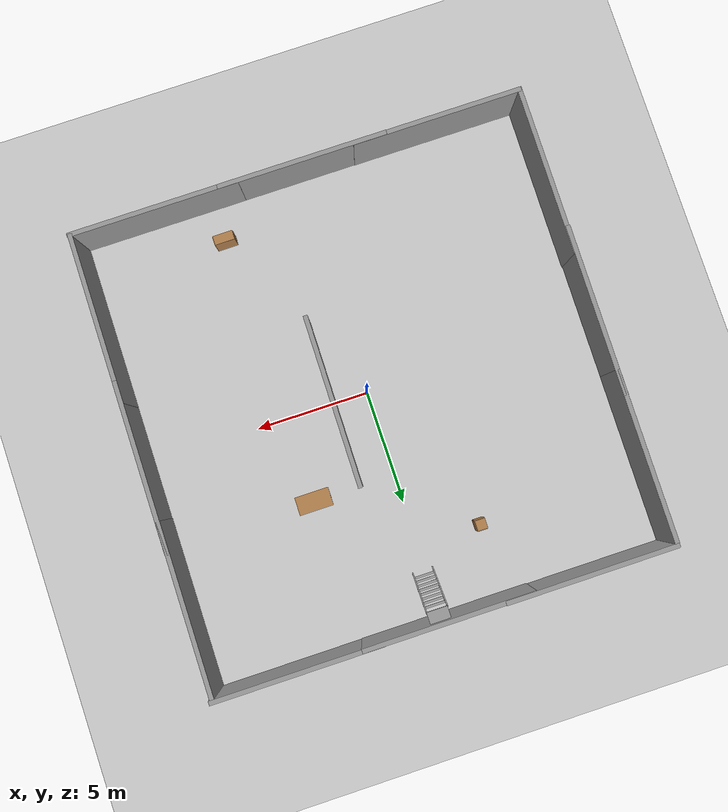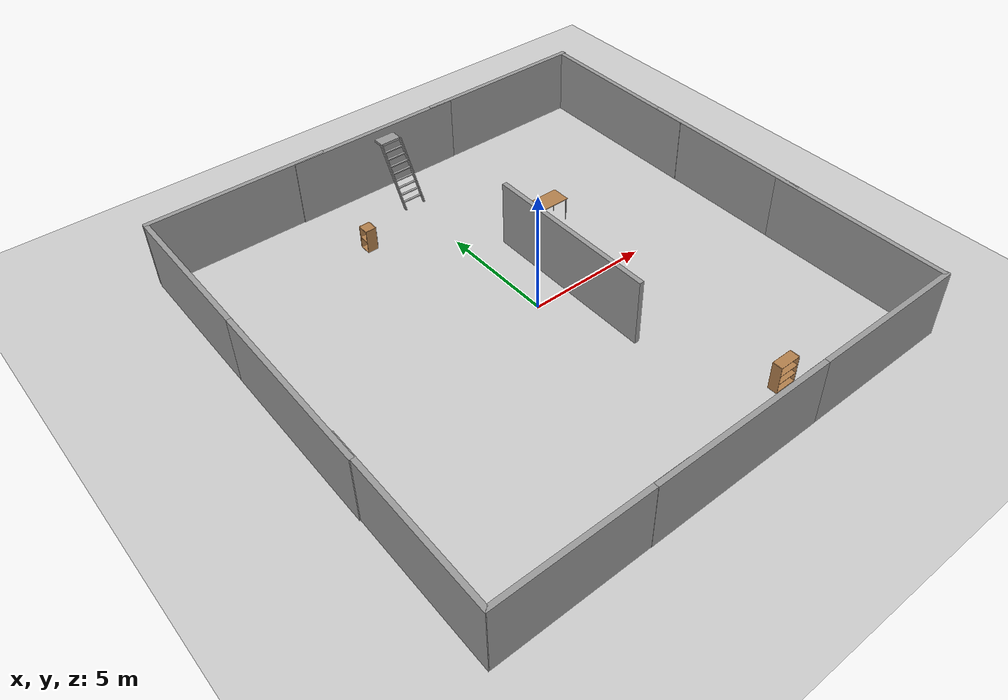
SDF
<sdf version="1.6">
 <world name="default">
  <model name="ground_plane">
   <static>1</static>
   <link name="link">
    <collision name="collision">
     <geometry><plane><normal>0 0 1</normal><size>100 100</size></plane></geometry>
     <surface><friction><ode><mu>100</mu><mu2>50</mu2></ode></friction></surface>
    </collision>
    <visual name="visual">
     <cast_shadows>0</cast_shadows>
     <geometry><plane><normal>0 0 1</normal><size>100 100</size></plane></geometry>
     <material>
      <ambient>1.0 1.0 1.0 1.0</ambient>
      <diffuse>0.8 0.8 0.8 1.0</diffuse>
      <specular>0.01 0.01 0.01 1.000000</specular>
     </material>
    </visual>
   </link>
  </model>
  <model name="grey_wall">
   <static>1</static>
   <link name="link">
    <pose>0 0 1.4 0 -0 0</pose>
    <collision name="collision"><geometry><box><size>7.5 0.2 2.8</size></box></geometry></collision>
    <visual name="visual">
     <cast_shadows>0</cast_shadows>
     <geometry><box><size>7.5 0.2 2.8</size></box></geometry>
     <material>
      <script>
       <uri>model://grey_wall/materials/scripts</uri>
       <uri>model://grey_wall/materials/textures</uri>
       <name>vrc/grey_wall</name>
      </script>
     </material>
    </visual>
   </link>
   <pose>-0.430951 -10.0176 0 0 -0 0</pose>
  </model>
  <model name="grey_wall_0">
   <static>1</static>
   <link name="link">
    <pose>0 0 1.4 0 -0 0</pose>
    <collision name="collision"><geometry><box><size>7.5 0.2 2.8</size></box></geometry></collision>
    <visual name="visual">
     <cast_shadows>0</cast_shadows>
     <geometry><box><size>7.5 0.2 2.8</size></box></geometry>
     <material>
      <script>
       <uri>model://grey_wall/materials/scripts</uri>
       <uri>model://grey_wall/materials/textures</uri>
       <name>vrc/grey_wall</name>
      </script>
     </material>
    </visual>
   </link>
   <pose>-6.43801 -10.0068 0 0 -0 0</pose>
  </model>
  <model name="grey_wall_1">
   <static>1</static>
   <link name="link">
    <pose>0 0 1.4 0 -0 0</pose>
    <collision name="collision"><geometry><box><size>7.5 0.2 2.8</size></box></geometry></collision>
    <visual name="visual">
     <cast_shadows>0</cast_shadows>
     <geometry><box><size>7.5 0.2 2.8</size></box></geometry>
     <material>
      <script>
       <uri>model://grey_wall/materials/scripts</uri>
       <uri>model://grey_wall/materials/textures</uri>
       <name>vrc/grey_wall</name>
      </script>
     </material>
    </visual>
   </link>
   <pose>-0.187528 10.1006 0 0 -0 0</pose>
  </model>
  <model name="grey_wall_2">
   <static>1</static>
   <link name="link">
    <pose>0 0 1.4 0 -0 0</pose>
    <collision name="collision"><geometry><box><size>7.5 0.2 2.8</size></box></geometry></collision>
    <visual name="visual">
     <cast_shadows>0</cast_shadows>
     <geometry><box><size>7.5 0.2 2.8</size></box></geometry>
     <material>
      <script>
       <uri>model://grey_wall/materials/scripts</uri>
       <uri>model://grey_wall/materials/textures</uri>
       <name>vrc/grey_wall</name>
      </script>
     </material>
    </visual>
   </link>
   <pose>-6.34448 10.1286 0 0 -0 0</pose>
  </model>
  <model name="grey_wall_3">
   <static>1</static>
   <link name="link">
    <pose>0 0 1.4 0 -0 0</pose>
    <collision name="collision"><geometry><box><size>7.5 0.2 2.8</size></box></geometry></collision>
    <visual name="visual">
     <cast_shadows>0</cast_shadows>
     <geometry><box><size>7.5 0.2 2.8</size></box></geometry>
     <material>
      <script>
       <uri>model://grey_wall/materials/scripts</uri>
       <uri>model://grey_wall/materials/textures</uri>
       <name>vrc/grey_wall</name>
      </script>
     </material>
    </visual>
   </link>
   <pose>-10.0924 -6.35537 0 0 0 -1.57741</pose>
  </model>
  <model name="grey_wall_3_clone">
   <static>1</static>
   <link name="link">
    <pose>0 0 1.4 0 -0 0</pose>
    <collision name="collision"><geometry><box><size>7.5 0.2 2.8</size></box></geometry></collision>
    <visual name="visual">
     <cast_shadows>0</cast_shadows>
     <geometry><box><size>7.5 0.2 2.8</size></box></geometry>
     <material>
      <script>
       <uri>model://grey_wall/materials/scripts</uri>
       <uri>model://grey_wall/materials/textures</uri>
       <name>vrc/grey_wall</name>
      </script>
     </material>
    </visual>
   </link>
   <pose>-10.0385 6.29221 0 0 0 -1.57741</pose>
  </model>
  <model name="grey_wall_3_clone_0">
   <static>1</static>
   <link name="link">
    <pose>0 0 1.4 0 -0 0</pose>
    <collision name="collision"><geometry><box><size>7.5 0.2 2.8</size></box></geometry></collision>
    <visual name="visual">
     <cast_shadows>0</cast_shadows>
     <geometry><box><size>7.5 0.2 2.8</size></box></geometry>
     <material>
      <script>
       <uri>model://grey_wall/materials/scripts</uri>
       <uri>model://grey_wall/materials/textures</uri>
       <name>vrc/grey_wall</name>
      </script>
     </material>
    </visual>
   </link>
   <pose>-10.0852 -0.090618 0 0 0 -1.57741</pose>
  </model>
  <model name="grey_wall_clone">
   <static>1</static>
   <link name="link">
    <pose>0 0 1.4 0 -0 0</pose>
    <collision name="collision"><geometry><box><size>7.5 0.2 2.8</size></box></geometry></collision>
    <visual name="visual">
     <cast_shadows>0</cast_shadows>
     <geometry><box><size>7.5 0.2 2.8</size></box></geometry>
     <material>
      <script>
       <uri>model://grey_wall/materials/scripts</uri>
       <uri>model://grey_wall/materials/textures</uri>
       <name>vrc/grey_wall</name>
      </script>
     </material>
    </visual>
   </link>
   <pose>6.15839 -10.0125 0 0 -0 0</pose>
  </model>
  <model name="grey_wall_3_clone_1">
   <static>1</static>
   <link name="link">
    <pose>0 0 1.4 0 -0 0</pose>
    <collision name="collision"><geometry><box><size>7.5 0.2 2.8</size></box></geometry></collision>
    <visual name="visual">
     <cast_shadows>0</cast_shadows>
     <geometry><box><size>7.5 0.2 2.8</size></box></geometry>
     <material>
      <script>
       <uri>model://grey_wall/materials/scripts</uri>
       <uri>model://grey_wall/materials/textures</uri>
       <name>vrc/grey_wall</name>
      </script>
     </material>
    </visual>
   </link>
   <pose>9.81082 -6.30361 0 0 0 -1.57741</pose>
  </model>
  <model name="grey_wall_3_clone_2">
   <static>1</static>
   <link name="link">
    <pose>0 0 1.4 0 -0 0</pose>
    <collision name="collision"><geometry><box><size>7.5 0.2 2.8</size></box></geometry></collision>
    <visual name="visual">
     <cast_shadows>0</cast_shadows>
     <geometry><box><size>7.5 0.2 2.8</size></box></geometry>
     <material>
      <script>
       <uri>model://grey_wall/materials/scripts</uri>
       <uri>model://grey_wall/materials/textures</uri>
       <name>vrc/grey_wall</name>
      </script>
     </material>
    </visual>
   </link>
   <pose>9.85875 0.188279 0 0 0 -1.57741</pose>
  </model>
  <model name="grey_wall_3_clone_3">
   <static>1</static>
   <link name="link">
    <pose>0 0 1.4 0 -0 0</pose>
    <collision name="collision"><geometry><box><size>7.5 0.2 2.8</size></box></geometry></collision>
    <visual name="visual">
     <cast_shadows>0</cast_shadows>
     <geometry><box><size>7.5 0.2 2.8</size></box></geometry>
     <material>
      <script>
       <uri>model://grey_wall/materials/scripts</uri>
       <uri>model://grey_wall/materials/textures</uri>
       <name>vrc/grey_wall</name>
      </script>
     </material>
    </visual>
   </link>
   <pose>9.88561 6.25818 0 0 0 -1.57741</pose>
  </model>
  <model name="grey_wall_1_clone">
   <static>1</static>
   <link name="link">
    <pose>0 0 1.4 0 -0 0</pose>
    <collision name="collision"><geometry><box><size>7.5 0.2 2.8</size></box></geometry></collision>
    <visual name="visual">
     <cast_shadows>0</cast_shadows>
     <geometry><box><size>7.5 0.2 2.8</size></box></geometry>
     <material>
      <script>
       <uri>model://grey_wall/materials/scripts</uri>
       <uri>model://grey_wall/materials/textures</uri>
       <name>vrc/grey_wall</name>
      </script>
     </material>
    </visual>
   </link>
   <pose>6.32176 10.1148 0 0 -0 0</pose>
  </model>
  <model name="grey_wall_3_clone_0_clone">
   <static>1</static>
   <link name="link">
    <pose>0 0 1.4 0 -0 0</pose>
    <collision name="collision"><geometry><box><size>7.5 0.2 2.8</size></box></geometry></collision>
    <visual name="visual">
     <cast_shadows>0</cast_shadows>
     <geometry><box><size>7.5 0.2 2.8</size></box></geometry>
     <material>
      <script>
       <uri>model://grey_wall/materials/scripts</uri>
       <uri>model://grey_wall/materials/textures</uri>
       <name>vrc/grey_wall</name>
      </script>
     </material>
    </visual>
   </link>
   <pose>1.52165 0.080496 0 0 0 -1.57741</pose>
  </model>
  <model name="cabinet">
   <static>1</static>
   <link name="cabinet_bottom_plate">
    <inertial>
     <pose>0 0 -1 0 -0 0</pose>
     <inertia><ixx>2.05</ixx><ixy>0</ixy><ixz>0</ixz><iyy>2.05</iyy><iyz>0</iyz><izz>2.05</izz></inertia>
     <mass>25</mass>
    </inertial>
    <collision name="cabinet_bottom_plate_geom">
     <pose>0 0 0.01 0 -0 0</pose>
     <geometry><box><size>0.45 0.45 0.02</size></box></geometry>
    </collision>
    <visual name="cabinet_bottom_plate_geom_visual">
     <pose>0 0 0.01 0 -0 0</pose>
     <geometry><box><size>0.45 0.45 0.02</size></box></geometry>
     <material>
      <script><uri>file://media/materials/scripts/gazebo.material</uri><name>Gazebo/Wood</name></script>
     </material>
    </visual>
    <collision name="cabinet_bottom_plate_geom_cabinet_back_plate">
     <pose>0.235 0 0.51 0 -0 0</pose>
     <geometry><box><size>0.02 0.45 1.02</size></box></geometry>
    </collision>
    <visual name="cabinet_bottom_plate_geom_cabinet_back_plate_visual">
     <pose>0.235 0 0.51 0 -0 0</pose>
     <geometry><box><size>0.02 0.45 1.02</size></box></geometry>
     <material>
      <script><uri>file://media/materials/scripts/gazebo.material</uri><name>Gazebo/Wood</name></script>
     </material>
    </visual>
    <collision name="cabinet_bottom_plate_geom_cabinet_left_plate">
     <pose>0 0.235 0.51 0 -0 0</pose>
     <geometry><box><size>0.45 0.02 1.02</size></box></geometry>
    </collision>
    <visual name="cabinet_bottom_plate_geom_cabinet_left_plate_visual">
     <pose>0 0.235 0.51 0 -0 0</pose>
     <geometry><box><size>0.45 0.02 1.02</size></box></geometry>
     <material>
      <script><uri>file://media/materials/scripts/gazebo.material</uri><name>Gazebo/Wood</name></script>
     </material>
    </visual>
    <collision name="cabinet_bottom_plate_geom_cabinet_middle_plate">
     <pose>0 0 0.51 0 -0 0</pose>
     <geometry><box><size>0.45 0.45 0.02</size></box></geometry>
    </collision>
    <visual name="cabinet_bottom_plate_geom_cabinet_middle_plate_visual">
     <pose>0 0 0.51 0 -0 0</pose>
     <geometry><box><size>0.45 0.45 0.02</size></box></geometry>
     <material>
      <script><uri>file://media/materials/scripts/gazebo.material</uri><name>Gazebo/Wood</name></script>
     </material>
    </visual>
    <collision name="cabinet_bottom_plate_geom_cabinet_right_plate">
     <pose>0 -0.235 0.51 0 -0 0</pose>
     <geometry><box><size>0.45 0.02 1.02</size></box></geometry>
    </collision>
    <visual name="cabinet_bottom_plate_geom_cabinet_right_plate_visual">
     <pose>0 -0.235 0.51 0 -0 0</pose>
     <geometry><box><size>0.45 0.02 1.02</size></box></geometry>
     <material>
      <script><uri>file://media/materials/scripts/gazebo.material</uri><name>Gazebo/Wood</name></script>
     </material>
    </visual>
    <collision name="cabinet_bottom_plate_geom_cabinet_top_plate">
     <pose>0 0 1.01 0 -0 0</pose>
     <geometry><box><size>0.45 0.45 0.02</size></box></geometry>
    </collision>
    <visual name="cabinet_bottom_plate_geom_cabinet_top_plate_visual">
     <pose>0 0 1.01 0 -0 0</pose>
     <geometry><box><size>0.45 0.45 0.02</size></box></geometry>
     <material>
      <script><uri>file://media/materials/scripts/gazebo.material</uri><name>Gazebo/Wood</name></script>
     </material>
    </visual>
   </link>
   <pose>-2.82615 6.92849 0 0 -0 0</pose>
  </model>
  <model name="bookshelf">
   <static>1</static>
   <link name="link">
    <inertial><mass>1</mass></inertial>
    <collision name="back">
     <pose>0 0.005 0.6 0 -0 0</pose>
     <geometry><box><size>0.9 0.01 1.2</size></box></geometry>
    </collision>
    <visual name="visual1">
     <pose>0 0.005 0.6 0 -0 0</pose>
     <geometry><box><size>0.9 0.01 1.2</size></box></geometry>
     <material>
      <script><uri>file://media/materials/scripts/gazebo.material</uri><name>Gazebo/Wood</name></script>
     </material>
    </visual>
    <collision name="left_side">
     <pose>0.45 -0.195 0.6 0 -0 0</pose>
     <geometry><box><size>0.02 0.4 1.2</size></box></geometry>
    </collision>
    <visual name="visual2">
     <pose>0.45 -0.195 0.6 0 -0 0</pose>
     <geometry><box><size>0.02 0.4 1.2</size></box></geometry>
     <material>
      <script><uri>file://media/materials/scripts/gazebo.material</uri><name>Gazebo/Wood</name></script>
     </material>
    </visual>
    <collision name="right_side">
     <pose>-0.45 -0.195 0.6 0 -0 0</pose>
     <geometry><box><size>0.02 0.4 1.2</size></box></geometry>
    </collision>
    <visual name="visual3">
     <pose>-0.45 -0.195 0.6 0 -0 0</pose>
     <geometry><box><size>0.02 0.4 1.2</size></box></geometry>
     <material>
      <script><uri>file://media/materials/scripts/gazebo.material</uri><name>Gazebo/Wood</name></script>
     </material>
    </visual>
    <collision name="bottom">
     <pose>0 -0.195 0.03 0 -0 0</pose>
     <geometry><box><size>0.88 0.4 0.06</size></box></geometry>
    </collision>
    <visual name="visual4">
     <pose>0 -0.195 0.03 0 -0 0</pose>
     <geometry><box><size>0.88 0.4 0.06</size></box></geometry>
     <material>
      <script><uri>file://media/materials/scripts/gazebo.material</uri><name>Gazebo/Wood</name></script>
     </material>
    </visual>
    <collision name="top">
     <pose>0 -0.195 1.19 0 -0 0</pose>
     <geometry><box><size>0.88 0.4 0.02</size></box></geometry>
    </collision>
    <visual name="visual5">
     <pose>0 -0.195 1.19 0 -0 0</pose>
     <geometry><box><size>0.88 0.4 0.02</size></box></geometry>
     <material>
      <script><uri>file://media/materials/scripts/gazebo.material</uri><name>Gazebo/Wood</name></script>
     </material>
    </visual>
    <collision name="low_shelf">
     <pose>0 -0.195 0.43 0 -0 0</pose>
     <geometry><box><size>0.88 0.4 0.02</size></box></geometry>
    </collision>
    <visual name="visual6">
     <pose>0 -0.195 0.43 0 -0 0</pose>
     <geometry><box><size>0.88 0.4 0.02</size></box></geometry>
     <material>
      <script><uri>file://media/materials/scripts/gazebo.material</uri><name>Gazebo/Wood</name></script>
     </material>
    </visual>
    <collision name="high_shelf">
     <pose>0 -0.195 0.8 0 -0 0</pose>
     <geometry><box><size>0.88 0.4 0.02</size></box></geometry>
    </collision>
    <visual name="visual7">
     <pose>0 -0.195 0.8 0 -0 0</pose>
     <geometry><box><size>0.88 0.4 0.02</size></box></geometry>
     <material>
      <script><uri>file://media/materials/scripts/gazebo.material</uri><name>Gazebo/Wood</name></script>
     </material>
    </visual>
   </link>
   <pose>3.81369 -8.10094 0 0 -0 0</pose>
  </model>
  <model name="table">
   <static>1</static>
   <link name="link">
    <collision name="surface">
     <pose>0 0 1 0 -0 0</pose>
     <geometry><box><size>1.5 0.8 0.03</size></box></geometry>
     <surface><friction><ode><mu>0.6</mu><mu2>0.6</mu2></ode></friction></surface>
    </collision>
    <visual name="visual1">
     <pose>0 0 1 0 -0 0</pose>
     <geometry><box><size>1.5 0.8 0.03</size></box></geometry>
     <material>
      <script><uri>file://media/materials/scripts/gazebo.material</uri><name>Gazebo/Wood</name></script>
     </material>
    </visual>
    <collision name="front_left_leg">
     <pose>0.68 0.38 0.5 0 -0 0</pose>
     <geometry><cylinder><radius>0.02</radius><length>1</length></cylinder></geometry>
    </collision>
    <visual name="front_left_leg">
     <pose>0.68 0.38 0.5 0 -0 0</pose>
     <geometry><cylinder><radius>0.02</radius><length>1</length></cylinder></geometry>
     <material>
      <script><uri>file://media/materials/scripts/gazebo.material</uri><name>Gazebo/Grey</name></script>
     </material>
    </visual>
    <collision name="front_right_leg">
     <pose>0.68 -0.38 0.5 0 -0 0</pose>
     <geometry><cylinder><radius>0.02</radius><length>1</length></cylinder></geometry>
    </collision>
    <visual name="front_right_leg">
     <pose>0.68 -0.38 0.5 0 -0 0</pose>
     <geometry><cylinder><radius>0.02</radius><length>1</length></cylinder></geometry>
     <material>
      <script><uri>file://media/materials/scripts/gazebo.material</uri><name>Gazebo/Grey</name></script>
     </material>
    </visual>
    <collision name="back_right_leg">
     <pose>-0.68 -0.38 0.5 0 -0 0</pose>
     <geometry><cylinder><radius>0.02</radius><length>1</length></cylinder></geometry>
    </collision>
    <visual name="back_right_leg">
     <pose>-0.68 -0.38 0.5 0 -0 0</pose>
     <geometry><cylinder><radius>0.02</radius><length>1</length></cylinder></geometry>
     <material>
      <script><uri>file://media/materials/scripts/gazebo.material</uri><name>Gazebo/Grey</name></script>
     </material>
    </visual>
    <collision name="back_left_leg">
     <pose>-0.68 0.38 0.5 0 -0 0</pose>
     <geometry><cylinder><radius>0.02</radius><length>1</length></cylinder></geometry>
    </collision>
    <visual name="back_left_leg">
     <pose>-0.68 0.38 0.5 0 -0 0</pose>
     <geometry><cylinder><radius>0.02</radius><length>1</length></cylinder></geometry>
     <material>
      <script><uri>file://media/materials/scripts/gazebo.material</uri><name>Gazebo/Grey</name></script>
     </material>
    </visual>
   </link>
   <pose>3.63178 3.75743 0 0 -0 0</pose>
  </model>
  <model name="ladder_60deg_0rails">
   <static>1</static>
   <link name="step0">
    <pose>0 0.15396 0.266667 0 -0 0</pose>
    <inertial>
     <mass>9.75482</mass>
     <inertia>
      <ixx>0.00957124</ixx>
      <iyy>0.65963</iyy>
      <izz>0.666842</izz>
      <ixy>0</ixy>
      <ixz>0</ixz>
      <iyz>0</iyz>
     </inertia>
    </inertial>
    <collision name="collision"><geometry><box><size>0.9 0.1016 0.0381</size></box></geometry></collision>
    <visual name="visual">
     <geometry><box><size>0.9 0.1016 0.0381</size></box></geometry>
     <material>
      <script><uri>file://media/materials/scripts/gazebo.material</uri><name>Gazebo/Grey</name></script>
     </material>
    </visual>
   </link>
   <link name="step1">
    <pose>0 0.30792 0.533333 0 -0 0</pose>
    <inertial>
     <mass>9.75482</mass>
     <inertia>
      <ixx>0.00957124</ixx>
      <iyy>0.65963</iyy>
      <izz>0.666842</izz>
      <ixy>0</ixy>
      <ixz>0</ixz>
      <iyz>0</iyz>
     </inertia>
    </inertial>
    <collision name="collision"><geometry><box><size>0.9 0.1016 0.0381</size></box></geometry></collision>
    <visual name="visual">
     <geometry><box><size>0.9 0.1016 0.0381</size></box></geometry>
     <material>
      <script><uri>file://media/materials/scripts/gazebo.material</uri><name>Gazebo/Grey</name></script>
     </material>
    </visual>
   </link>
   <link name="step2">
    <pose>0 0.46188 0.8 0 -0 0</pose>
    <inertial>
     <mass>9.75482</mass>
     <inertia>
      <ixx>0.00957124</ixx>
      <iyy>0.65963</iyy>
      <izz>0.666842</izz>
      <ixy>0</ixy>
      <ixz>0</ixz>
      <iyz>0</iyz>
     </inertia>
    </inertial>
    <collision name="collision"><geometry><box><size>0.9 0.1016 0.0381</size></box></geometry></collision>
    <visual name="visual">
     <geometry><box><size>0.9 0.1016 0.0381</size></box></geometry>
     <material>
      <script><uri>file://media/materials/scripts/gazebo.material</uri><name>Gazebo/Grey</name></script>
     </material>
    </visual>
   </link>
   <link name="step3">
    <pose>0 0.61584 1.06667 0 -0 0</pose>
    <inertial>
     <mass>9.75482</mass>
     <inertia>
      <ixx>0.00957124</ixx>
      <iyy>0.65963</iyy>
      <izz>0.666842</izz>
      <ixy>0</ixy>
      <ixz>0</ixz>
      <iyz>0</iyz>
     </inertia>
    </inertial>
    <collision name="collision"><geometry><box><size>0.9 0.1016 0.0381</size></box></geometry></collision>
    <visual name="visual">
     <geometry><box><size>0.9 0.1016 0.0381</size></box></geometry>
     <material>
      <script><uri>file://media/materials/scripts/gazebo.material</uri><name>Gazebo/Grey</name></script>
     </material>
    </visual>
   </link>
   <link name="step4">
    <pose>0 0.7698 1.33333 0 -0 0</pose>
    <inertial>
     <mass>9.75482</mass>
     <inertia>
      <ixx>0.00957124</ixx>
      <iyy>0.65963</iyy>
      <izz>0.666842</izz>
      <ixy>0</ixy>
      <ixz>0</ixz>
      <iyz>0</iyz>
     </inertia>
    </inertial>
    <collision name="collision"><geometry><box><size>0.9 0.1016 0.0381</size></box></geometry></collision>
    <visual name="visual">
     <geometry><box><size>0.9 0.1016 0.0381</size></box></geometry>
     <material>
      <script><uri>file://media/materials/scripts/gazebo.material</uri><name>Gazebo/Grey</name></script>
     </material>
    </visual>
   </link>
   <link name="step5">
    <pose>0 0.92376 1.6 0 -0 0</pose>
    <inertial>
     <mass>9.75482</mass>
     <inertia>
      <ixx>0.00957124</ixx>
      <iyy>0.65963</iyy>
      <izz>0.666842</izz>
      <ixy>0</ixy>
      <ixz>0</ixz>
      <iyz>0</iyz>
     </inertia>
    </inertial>
    <collision name="collision"><geometry><box><size>0.9 0.1016 0.0381</size></box></geometry></collision>
    <visual name="visual">
     <geometry><box><size>0.9 0.1016 0.0381</size></box></geometry>
     <material>
      <script><uri>file://media/materials/scripts/gazebo.material</uri><name>Gazebo/Grey</name></script>
     </material>
    </visual>
   </link>
   <link name="step6">
    <pose>0 1.07772 1.86667 0 -0 0</pose>
    <inertial>
     <mass>9.75482</mass>
     <inertia>
      <ixx>0.00957124</ixx>
      <iyy>0.65963</iyy>
      <izz>0.666842</izz>
      <ixy>0</ixy>
      <ixz>0</ixz>
      <iyz>0</iyz>
     </inertia>
    </inertial>
    <collision name="collision"><geometry><box><size>0.9 0.1016 0.0381</size></box></geometry></collision>
    <visual name="visual">
     <geometry><box><size>0.9 0.1016 0.0381</size></box></geometry>
     <material>
      <script><uri>file://media/materials/scripts/gazebo.material</uri><name>Gazebo/Grey</name></script>
     </material>
    </visual>
   </link>
   <link name="step7">
    <pose>0 1.23168 2.13333 0 -0 0</pose>
    <inertial>
     <mass>9.75482</mass>
     <inertia>
      <ixx>0.00957124</ixx>
      <iyy>0.65963</iyy>
      <izz>0.666842</izz>
      <ixy>0</ixy>
      <ixz>0</ixz>
      <iyz>0</iyz>
     </inertia>
    </inertial>
    <collision name="collision"><geometry><box><size>0.9 0.1016 0.0381</size></box></geometry></collision>
    <visual name="visual">
     <geometry><box><size>0.9 0.1016 0.0381</size></box></geometry>
     <material>
      <script><uri>file://media/materials/scripts/gazebo.material</uri><name>Gazebo/Grey</name></script>
     </material>
    </visual>
   </link>
   <link name="landing">
    <pose>0 1.68564 2.4 0 -0 0</pose>
    <inertial>
     <mass>57.6072</mass>
     <inertia><ixx>1.73518</ixx><iyy>3.89545</iyy><izz>5.6167</izz><ixy>0</ixy><ixz>0</ixz><iyz>0</iyz></inertia>
    </inertial>
    <collision name="collision"><geometry><box><size>0.9 0.6 0.1016</size></box></geometry></collision>
    <visual name="visual">
     <geometry><box><size>0.9 0.6 0.1016</size></box></geometry>
     <material>
      <script><uri>file://media/materials/scripts/gazebo.material</uri><name>Gazebo/Grey</name></script>
     </material>
    </visual>
   </link>
   <link name="left_side_wall">
    <pose>-0.45 0.69282 1.2 1.0472 -0 0</pose>
    <collision name="collision"><geometry><box><size>0.0508 2.85128 0.13</size></box></geometry></collision>
    <visual name="visual">
     <geometry><box><size>0.0508 2.85128 0.13</size></box></geometry>
     <material>
      <script><uri>file://media/materials/scripts/gazebo.material</uri><name>Gazebo/Grey</name></script>
     </material>
    </visual>
   </link>
   <link name="right_side_wall">
    <pose>0.45 0.69282 1.2 1.0472 -0 0</pose>
    <collision name="collision"><geometry><box><size>0.0508 2.85128 0.13</size></box></geometry></collision>
    <visual name="visual">
     <geometry><box><size>0.0508 2.85128 0.13</size></box></geometry>
     <material>
      <script><uri>file://media/materials/scripts/gazebo.material</uri><name>Gazebo/Grey</name></script>
     </material>
    </visual>
   </link>
   <pose>0.141363 8.11051 0 0 -0 0</pose>
  </model>
 </world>
</sdf>
